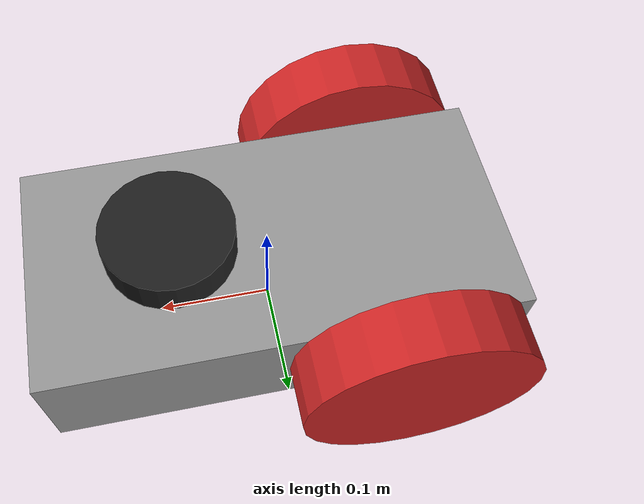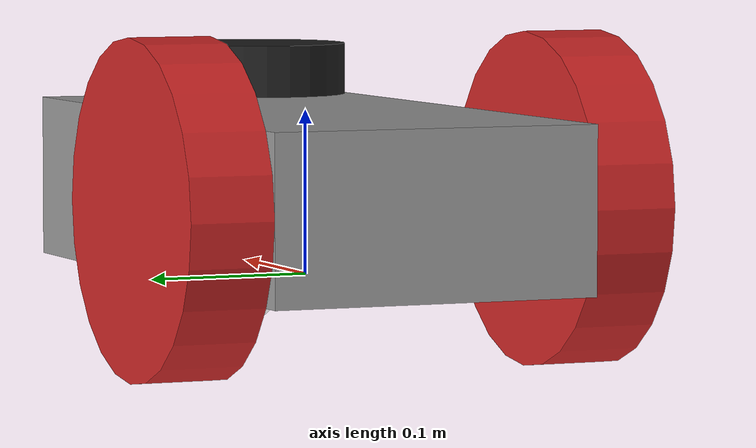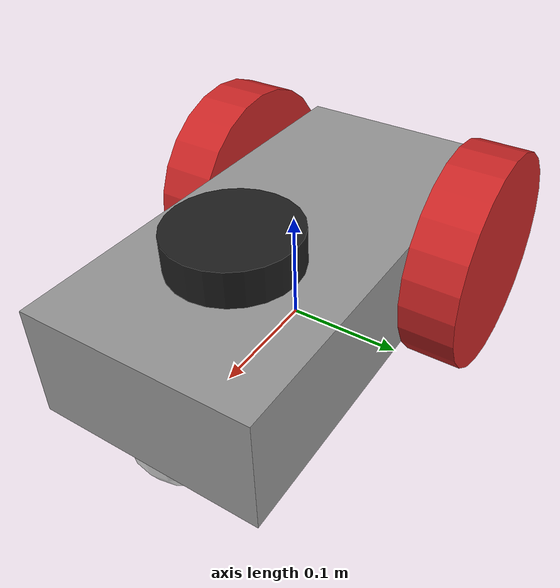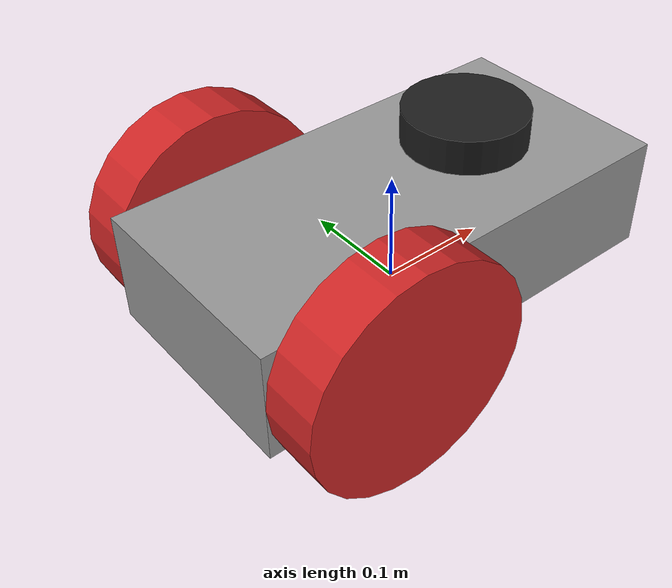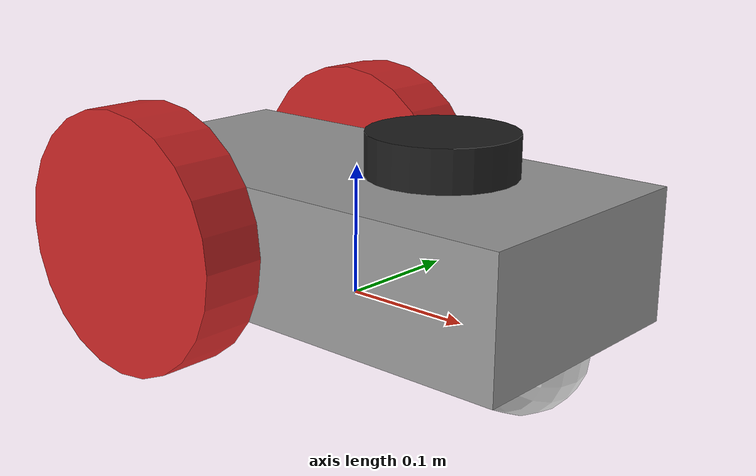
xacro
<?xml version="1.0" ?>
  <robot name="opensg_robot" xmlns:xacro="http://ros.org/wiki/xacro">
  <xacro:include filename="$(find robot_description)/urdf/common_properties.xacro"/>
  <xacro:include filename="$(find robot_description)/urdf/opensg_robot.gazebo.xacro"/>

  <link name="base_footprint"/>

  <joint name="base_joint" type="fixed">
    <parent link="base_footprint"/>
    <child link="base_link" />
    <origin xyz="0 0 0" rpy="0 0 0"/>
  </joint>

  <link name="base_link">
    <visual>
      <origin xyz = "0 0 0.05" rpy = "0 0 0"/>
      <geometry>
        <box size = "0.4 0.2 0.1" />
      </geometry>
      <material name="grey"/>
    </visual>

    <collision>
      <origin xyz = "0 0 0.05" rpy = "0 0 0"/>
      <geometry>
        <box size = "0.4 0.2 0.1" />
      </geometry>
    </collision>

    <inertial>
      <origin xyz="0 0 0" rpy="0 0 0"/>
      <mass value="1.3729096e+00"/>
      <inertia ixx="8.7002718e-03" ixy="-4.7576583e-05" ixz="1.1160499e-04"
              iyy="8.6195418e-03" iyz="-3.5422299e-06"
              izz="1.4612727e-02" />
    </inertial>
  </link>

  <joint name = "front_caster_joint" type = "fixed">
    <parent link = "base_link" />
    <child link = "front_caster" />
    <origin xyz = "0.15 0 0" rpy = "1.57 0 0"/>
  </joint>

  <link name="front_caster">
    <visual>
      <origin xyz = "0 0 0" rpy = "0 0 0"/>
      <geometry>
        <sphere radius="0.05"/>
      </geometry>
      <material name="white"/>
    </visual>

    <collision>
      <origin xyz = "0.15 0 0" rpy = "1.57 0 0"/>
      <geometry>
        <sphere radius="0.05"/>
      </geometry>
    </collision>

    <inertial>
      <origin xyz="0 0 0" />
      <mass value="0.005" />
      <inertia ixx="0.001" ixy="0.0" ixz="0.0"
              iyy="0.001" iyz="0.0"
              izz="0.001" />
    </inertial>
  </link>

  <joint name="scan_joint" type="fixed">
    <parent link="base_link"/>
    <child link="base_scan"/>
    <origin xyz="0.08 0 0.122" rpy="0 0 0"/>
  </joint>

  <link name="base_scan">
    <visual>
      <origin xyz="0 0 0" rpy="0 0 0"/>
      <geometry>
        <cylinder length="0.0315" radius="0.055"/>
      </geometry>
    </visual>

    <collision>
      <origin xyz="0.015 0 -0.0065" rpy="0 0 0"/>
      <geometry>
        <cylinder length="0.0315" radius="0.055"/>
      </geometry>
    </collision>

    <inertial>
      <mass value="0.114" />
      <origin xyz="0 0 0" />
      <inertia ixx="0.001" ixy="0.0" ixz="0.0"
               iyy="0.001" iyz="0.0"
               izz="0.001" />
    </inertial>
  </link>

  <joint name = "left_wheel_joint" type = "continuous">
    <parent link = "base_link" />
    <child link = "left_wheel" />
    <origin xyz = "-0.1 0.125 0.05" rpy = "0 0 0" />
    <axis xyz = "0 1 0" />
  </joint>

  <link name="left_wheel">
    <visual>
      <origin xyz="0 0 0" rpy="1.57 0 0"/>
      <geometry>
        <cylinder radius = "0.1" length = "0.05"/>
      </geometry>
      <material name="red"/>
    </visual>

    <collision>
    <origin xyz="0 0 0" rpy="1.57 0 0"/>
      <geometry>
        <cylinder radius = "0.1" length = "0.05"/>
      </geometry>
    </collision>

    <inertial>
      <origin xyz="0 0 0" />
      <mass value="2.8498940e-02" />
      <inertia ixx="1.1175580e-05" ixy="-4.2369783e-11" ixz="-5.9381719e-09"
              iyy="1.1192413e-05" iyz="-1.4400107e-11"
              izz="2.0712558e-05" />
    </inertial>
  </link>

  <joint name = "right_wheel_joint" type = "continuous">
    <parent link = "base_link" />
    <child link = "right_wheel" />
    <origin xyz = "-0.1 -0.125 0.05" rpy = "0 0 0"/>
    <axis xyz = "0 1 0"/>
  </joint>

  <link name="right_wheel">
    <visual>
      <origin xyz="0 0 0" rpy="1.57 0 0"/>
      <geometry>
        <cylinder radius = "0.1" length = "0.05"/>
      </geometry>
      <material name="red"/>
    </visual>

    <collision>
      <origin xyz="0 0 0" rpy="1.57 0 0"/>
      <geometry>
        <cylinder radius = "0.1" length = "0.05"/>
      </geometry>
    </collision>

    <inertial>
      <origin xyz="0 0 0" />
      <mass value="2.8498940e-02" />
      <inertia ixx="1.1175580e-05" ixy="-4.2369783e-11" ixz="-5.9381719e-09"
              iyy="1.1192413e-05" iyz="-1.4400107e-11"
              izz="2.0712558e-05" />
    </inertial>
  </link>
</robot>
